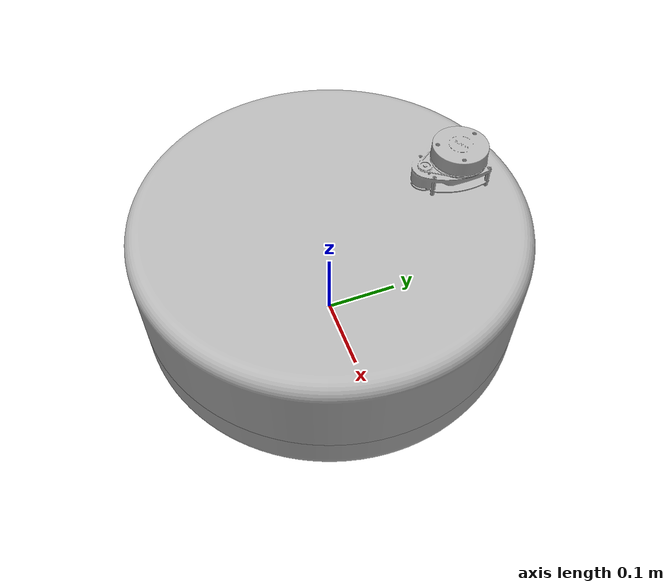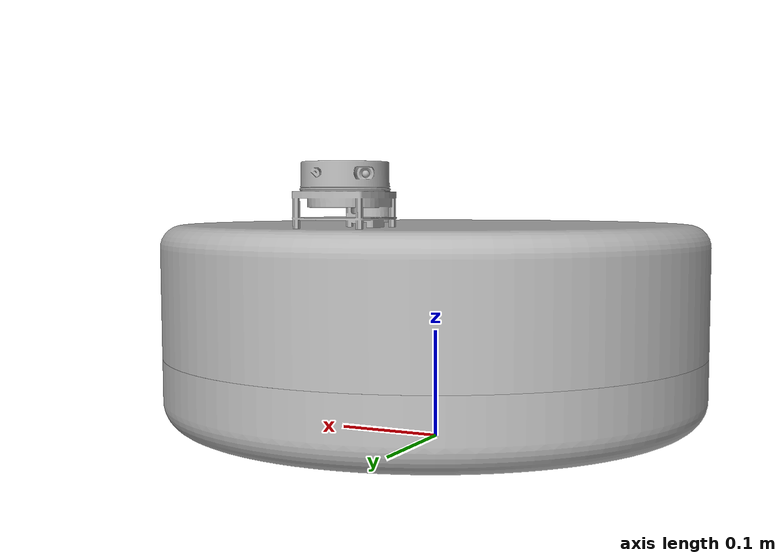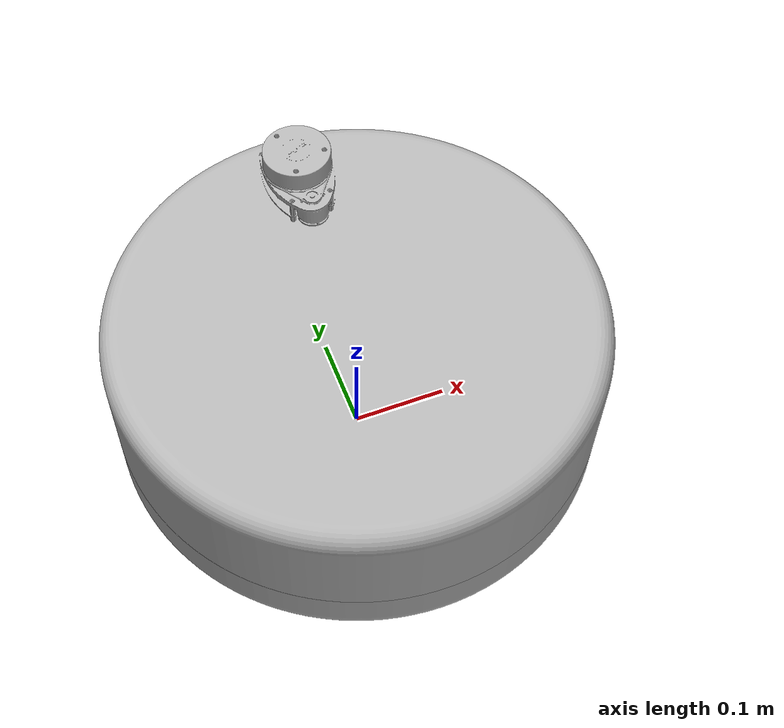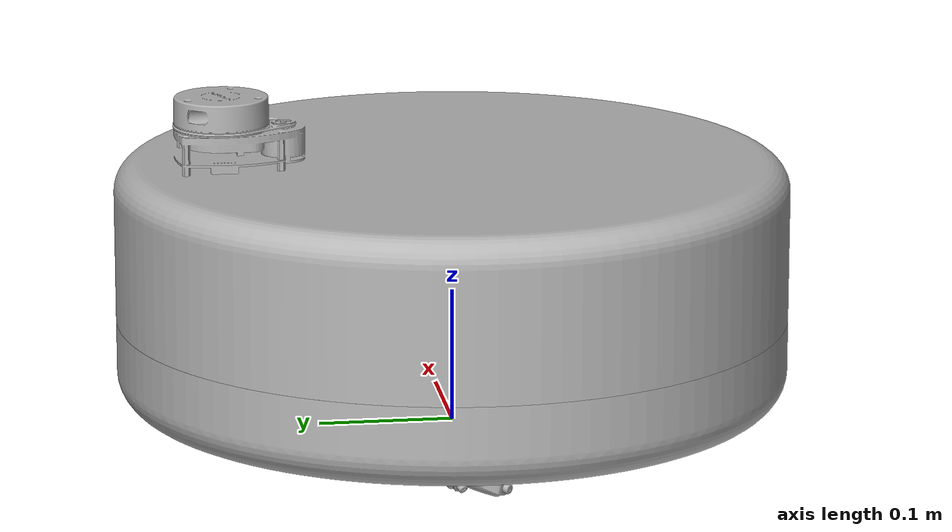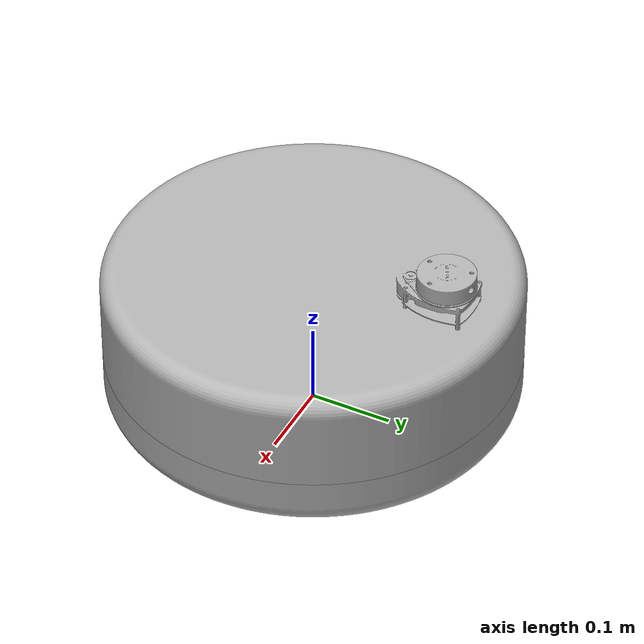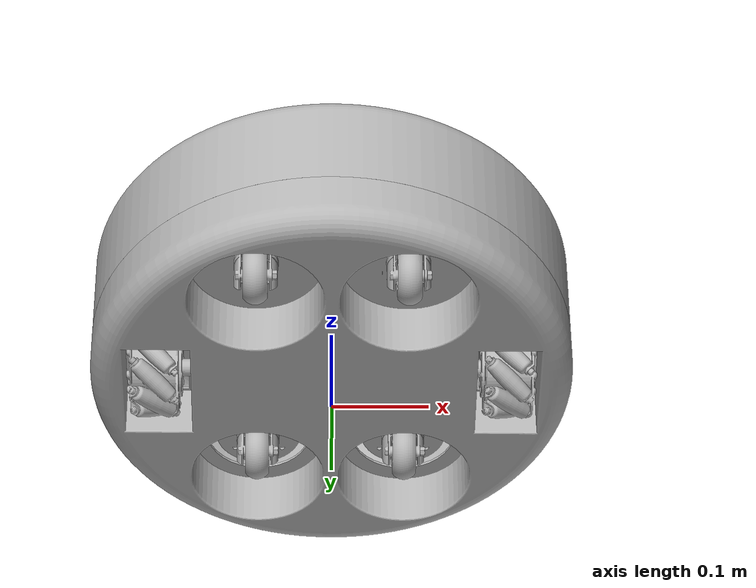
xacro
<?xml version="1.0" ?>
<robot name="wheelbase" xmlns:xacro="http://www.ros.org/wiki/xacro">

<xacro:include filename="$(find wheelbase_description)/models/urdf/materials.xacro" />
<xacro:include filename="$(find wheelbase_gazebo)/gazebo/wheelbase_materials.gazebo" />
<xacro:include filename="$(find wheelbase_gazebo)/gazebo/wheelbase_plugins.gazebo" />
<xacro:include filename="$(find wheelbase_gazebo)/gazebo/wheelbase_physics.gazebo" />

<link name="base_link">
  <inertial>
    <origin xyz="4.877641986557568e-16 -0.018658552355966238 0.08278725001137692" rpy="0 0 0"/>
    <mass value="3.805688673818861"/>
    <inertia ixx="0.063163" iyy="0.054403" izz="0.117281" ixy="0.0" iyz="-0.000489" ixz="0.0"/>
  </inertial>
  <visual>
    <origin xyz="0 0 0" rpy="0 0 0"/>
    <geometry>
      <mesh filename="$(find wheelbase_description)/models/meshes/base_link.stl" scale="0.001 0.001 0.001"/>
    </geometry>
    <material name="silver"/>
  </visual>
  <collision>
    <origin xyz="0 0 0" rpy="0 0 0"/>
    <geometry>
      <mesh filename="$(find wheelbase_description)/models/meshes/base_link.stl" scale="0.001 0.001 0.001"/>
    </geometry>
  </collision>
</link>

<link name="blbody_1">
  <inertial>
    <origin xyz="0.00014938972183493882 -0.007359677627955308 -0.013592300867627055" rpy="0 0 0"/>
    <mass value="0.19014627005982346"/>
    <inertia ixx="8.5e-05" iyy="7.3e-05" izz="7.6e-05" ixy="1e-06" iyz="-2.6e-05" ixz="1e-06"/>
  </inertial>
  <visual>
    <origin xyz="0.0775 0.133688 -0.074672" rpy="0 0 0"/>
    <geometry>
      <mesh filename="$(find wheelbase_description)/models/meshes/blbody_1.stl" scale="0.001 0.001 0.001"/>
    </geometry>
    <material name="silver"/>
  </visual>
  <collision>
    <origin xyz="0.0775 0.133688 -0.074672" rpy="0 0 0"/>
    <geometry>
      <mesh filename="$(find wheelbase_description)/models/meshes/blbody_1.stl" scale="0.001 0.001 0.001"/>
    </geometry>
  </collision>
</link>

<link name="brbody_1">
  <inertial>
    <origin xyz="0.00014939157119377156 -0.007359677627955363 -0.013592300867627097" rpy="0 0 0"/>
    <mass value="0.19014627005982263"/>
    <inertia ixx="8.5e-05" iyy="7.3e-05" izz="7.6e-05" ixy="1e-06" iyz="-2.6e-05" ixz="1e-06"/>
  </inertial>
  <visual>
    <origin xyz="-0.0775 0.133688 -0.074672" rpy="0 0 0"/>
    <geometry>
      <mesh filename="$(find wheelbase_description)/models/meshes/brbody_1.stl" scale="0.001 0.001 0.001"/>
    </geometry>
    <material name="silver"/>
  </visual>
  <collision>
    <origin xyz="-0.0775 0.133688 -0.074672" rpy="0 0 0"/>
    <geometry>
      <mesh filename="$(find wheelbase_description)/models/meshes/brbody_1.stl" scale="0.001 0.001 0.001"/>
    </geometry>
  </collision>
</link>

<link name="flbody_1">
  <inertial>
    <origin xyz="0.0001493896602373368 -0.007371286050261883 -0.013586022157761626" rpy="0 0 0"/>
    <mass value="0.19014627109702392"/>
    <inertia ixx="8.5e-05" iyy="7.2e-05" izz="7.6e-05" ixy="1e-06" iyz="-2.6e-05" ixz="1e-06"/>
  </inertial>
  <visual>
    <origin xyz="0.07798 -0.134335 -0.074428" rpy="0 0 0"/>
    <geometry>
      <mesh filename="$(find wheelbase_description)/models/meshes/flbody_1.stl" scale="0.001 0.001 0.001"/>
    </geometry>
    <material name="silver"/>
  </visual>
  <collision>
    <origin xyz="0.07798 -0.134335 -0.074428" rpy="0 0 0"/>
    <geometry>
      <mesh filename="$(find wheelbase_description)/models/meshes/flbody_1.stl" scale="0.001 0.001 0.001"/>
    </geometry>
  </collision>
</link>

<link name="frbody_1">
  <inertial>
    <origin xyz="0.00014939154224478945 -0.0073364432145827385 -0.013604729372114231" rpy="0 0 0"/>
    <mass value="0.19014627066064962"/>
    <inertia ixx="8.5e-05" iyy="7.3e-05" izz="7.6e-05" ixy="1e-06" iyz="-2.6e-05" ixz="1e-06"/>
  </inertial>
  <visual>
    <origin xyz="-0.07702 -0.13438 -0.074773" rpy="0 0 0"/>
    <geometry>
      <mesh filename="$(find wheelbase_description)/models/meshes/frbody_1.stl" scale="0.001 0.001 0.001"/>
    </geometry>
    <material name="silver"/>
  </visual>
  <collision>
    <origin xyz="-0.07702 -0.13438 -0.074773" rpy="0 0 0"/>
    <geometry>
      <mesh filename="$(find wheelbase_description)/models/meshes/frbody_1.stl" scale="0.001 0.001 0.001"/>
    </geometry>
  </collision>
</link>

<link name="flwheel_1">
  <inertial>
    <origin xyz="0.011664000000000271 4.85031257532742e-07 3.2883506063258183e-07" rpy="0 0 0"/>
    <mass value="0.4002742105569766"/>
    <inertia ixx="0.000177" iyy="0.000105" izz="0.000105" ixy="-0.0" iyz="-0.0" ixz="0.0"/>
  </inertial>
  <visual>
    <origin xyz="0.089644 -0.107 -0.032259" rpy="0 0 0"/>
    <geometry>
      <mesh filename="$(find wheelbase_description)/models/meshes/flwheel_1.stl" scale="0.001 0.001 0.001"/>
    </geometry>
    <material name="silver"/>
  </visual>
  <collision>
    <origin xyz="0.089644 -0.107 -0.032259" rpy="0 0 0"/>
    <geometry>
      <mesh filename="$(find wheelbase_description)/models/meshes/flwheel_1.stl" scale="0.001 0.001 0.001"/>
    </geometry>
  </collision>
</link>

<link name="frwheel_1">
  <inertial>
    <origin xyz="0.011663999999999827 8.189762357169172e-08 2.5024366512998997e-07" rpy="0 0 0"/>
    <mass value="0.4002742105569771"/>
    <inertia ixx="0.000177" iyy="0.000105" izz="0.000105" ixy="-0.0" iyz="0.0" ixz="0.0"/>
  </inertial>
  <visual>
    <origin xyz="-0.065356 -0.107154 -0.032534" rpy="0 0 0"/>
    <geometry>
      <mesh filename="$(find wheelbase_description)/models/meshes/frwheel_1.stl" scale="0.001 0.001 0.001"/>
    </geometry>
    <material name="silver"/>
  </visual>
  <collision>
    <origin xyz="-0.065356 -0.107154 -0.032534" rpy="0 0 0"/>
    <geometry>
      <mesh filename="$(find wheelbase_description)/models/meshes/frwheel_1.stl" scale="0.001 0.001 0.001"/>
    </geometry>
  </collision>
</link>

<link name="brwheel_1">
  <inertial>
    <origin xyz="-0.011664000000000077 -2.9881071383908164e-07 -4.217513900617309e-07" rpy="0 0 0"/>
    <mass value="0.40027421055697693"/>
    <inertia ixx="0.000177" iyy="0.000105" izz="0.000105" ixy="-0.0" iyz="-0.0" ixz="0.0"/>
  </inertial>
  <visual>
    <origin xyz="-0.089164 0.160987 -0.032481" rpy="0 0 0"/>
    <geometry>
      <mesh filename="$(find wheelbase_description)/models/meshes/brwheel_1.stl" scale="0.001 0.001 0.001"/>
    </geometry>
    <material name="silver"/>
  </visual>
  <collision>
    <origin xyz="-0.089164 0.160987 -0.032481" rpy="0 0 0"/>
    <geometry>
      <mesh filename="$(find wheelbase_description)/models/meshes/brwheel_1.stl" scale="0.001 0.001 0.001"/>
    </geometry>
  </collision>
</link>

<link name="blwheel_1">
  <inertial>
    <origin xyz="-0.011664000000000133 -2.988107136447926e-07 -4.217513900617309e-07" rpy="0 0 0"/>
    <mass value="0.4002742105569769"/>
    <inertia ixx="0.000177" iyy="0.000105" izz="0.000105" ixy="-0.0" iyz="-0.0" ixz="0.0"/>
  </inertial>
  <visual>
    <origin xyz="0.065836 0.160987 -0.032481" rpy="0 0 0"/>
    <geometry>
      <mesh filename="$(find wheelbase_description)/models/meshes/blwheel_1.stl" scale="0.001 0.001 0.001"/>
    </geometry>
    <material name="silver"/>
  </visual>
  <collision>
    <origin xyz="0.065836 0.160987 -0.032481" rpy="0 0 0"/>
    <geometry>
      <mesh filename="$(find wheelbase_description)/models/meshes/blwheel_1.stl" scale="0.001 0.001 0.001"/>
    </geometry>
  </collision>
</link>

<link name="lmwheel_1">
  <inertial>
    <origin xyz="-0.02451118669748789 -4.022434244760521e-07 2.780890716314044e-08" rpy="0 0 0"/>
    <mass value="0.2558759862973169"/>
    <inertia ixx="0.000296" iyy="0.000205" izz="0.000205" ixy="-0.0" iyz="-0.0" ixz="-0.0"/>
  </inertial>
  <visual>
    <origin xyz="0.157 -8.4e-05 -0.053747" rpy="0 0 0"/>
    <geometry>
      <mesh filename="$(find wheelbase_description)/models/meshes/lmwheel_1.stl" scale="0.001 0.001 0.001"/>
    </geometry>
    <material name="silver"/>
  </visual>
  <collision>
    <origin xyz="0.157 -8.4e-05 -0.053747" rpy="0 0 0"/>
    <geometry>
      <mesh filename="$(find wheelbase_description)/models/meshes/lmwheel_1.stl" scale="0.001 0.001 0.001"/>
    </geometry>
  </collision>
</link>

<link name="rmwheel_1">
  <inertial>
    <origin xyz="0.024511186697488335 1.5354622580527905e-07 2.402273406934552e-07" rpy="0 0 0"/>
    <mass value="0.2558759862973067"/>
    <inertia ixx="0.000296" iyy="0.000205" izz="0.000205" ixy="0.0" iyz="0.0" ixz="0.0"/>
  </inertial>
  <visual>
    <origin xyz="-0.157 -0.000182 -0.053746" rpy="0 0 0"/>
    <geometry>
      <mesh filename="$(find wheelbase_description)/models/meshes/rmwheel_1.stl" scale="0.001 0.001 0.001"/>
    </geometry>
    <material name="silver"/>
  </visual>
  <collision>
    <origin xyz="-0.157 -0.000182 -0.053746" rpy="0 0 0"/>
    <geometry>
      <mesh filename="$(find wheelbase_description)/models/meshes/rmwheel_1.stl" scale="0.001 0.001 0.001"/>
    </geometry>
  </collision>
</link>

<link name="l_m_clamp_1">
  <inertial>
    <origin xyz="0.05064998589086303 -0.04461412871917579 -0.04614971479491306" rpy="0 0 0"/>
    <mass value="1.781612993557575"/>
    <inertia ixx="0.006616" iyy="0.002696" izz="0.007336" ixy="0.000109" iyz="-0.001506" ixz="0.000421"/>
  </inertial>
  <visual>
    <origin xyz="0.1395 -0.076797 -0.11294" rpy="0 0 0"/>
    <geometry>
      <mesh filename="$(find wheelbase_description)/models/meshes/l_m_clamp_1.stl" scale="0.001 0.001 0.001"/>
    </geometry>
    <material name="silver"/>
  </visual>
  <collision>
    <origin xyz="0.1395 -0.076797 -0.11294" rpy="0 0 0"/>
    <geometry>
      <mesh filename="$(find wheelbase_description)/models/meshes/l_m_clamp_1.stl" scale="0.001 0.001 0.001"/>
    </geometry>
  </collision>
</link>

<link name="r_m_clamp_1">
  <inertial>
    <origin xyz="-0.05056459586676207 -0.045464553847886925 -0.046249593954142215" rpy="0 0 0"/>
    <mass value="1.7657597378662766"/>
    <inertia ixx="0.006433" iyy="0.002681" izz="0.007143" ixy="-0.000124" iyz="-0.001487" ixz="-0.000423"/>
  </inertial>
  <visual>
    <origin xyz="-0.1395 -0.076797 -0.11294" rpy="0 0 0"/>
    <geometry>
      <mesh filename="$(find wheelbase_description)/models/meshes/r_m_clamp_1.stl" scale="0.001 0.001 0.001"/>
    </geometry>
    <material name="silver"/>
  </visual>
  <collision>
    <origin xyz="-0.1395 -0.076797 -0.11294" rpy="0 0 0"/>
    <geometry>
      <mesh filename="$(find wheelbase_description)/models/meshes/r_m_clamp_1.stl" scale="0.001 0.001 0.001"/>
    </geometry>
  </collision>
</link>

<link name="topcover_1">
  <inertial>
    <origin xyz="-2.8402894336812473e-05 0.006380708957092697 0.08894790371795151" rpy="0 0 0"/>
    <mass value="0.9083298747068661"/>
    <inertia ixx="0.021829" iyy="0.020969" izz="0.040194" ixy="4e-06" iyz="-0.000268" ixz="1e-06"/>
  </inertial>
  <visual>
    <origin xyz="0.0 -6.6e-05 -0.083" rpy="0 0 0"/>
    <geometry>
      <mesh filename="$(find wheelbase_description)/models/meshes/topcover_1.stl" scale="0.001 0.001 0.001"/>
    </geometry>
    <material name="silver"/>
  </visual>
  <collision>
    <origin xyz="0.0 -6.6e-05 -0.083" rpy="0 0 0"/>
    <geometry>
      <mesh filename="$(find wheelbase_description)/models/meshes/topcover_1.stl" scale="0.001 0.001 0.001"/>
    </geometry>
  </collision>
</link>

<link name="basecover_1">
  <inertial>
    <origin xyz="4.306271547693276e-08 -1.3417406008355676e-06 -0.041449190774674516" rpy="0 0 0"/>
    <mass value="8.26904328209992"/>
    <inertia ixx="0.164421" iyy="0.172326" izz="0.330566" ixy="0.0" iyz="0.0" ixz="0.0"/>
  </inertial>
  <visual>
    <origin xyz="0.0 -6.6e-05 -0.083" rpy="0 0 0"/>
    <geometry>
      <mesh filename="$(find wheelbase_description)/models/meshes/basecover_1.stl" scale="0.001 0.001 0.001"/>
    </geometry>
    <material name="silver"/>
  </visual>
  <collision>
    <origin xyz="0.0 -6.6e-05 -0.083" rpy="0 0 0"/>
    <geometry>
      <mesh filename="$(find wheelbase_description)/models/meshes/basecover_1.stl" scale="0.001 0.001 0.001"/>
    </geometry>
  </collision>
</link>

<link name="lidar_1">
  <inertial>
    <origin xyz="-0.001262937955366997 0.0019039619404818409 -0.013950427004351534" rpy="0 0 0"/>
    <mass value="0.17388739461388325"/>
    <inertia ixx="7.5e-05" iyy="7.9e-05" izz="0.000125" ixy="0.0" iyz="-2e-06" ixz="1e-06"/>
  </inertial>
  <visual>
    <origin xyz="0.0005 -0.170623 -0.251375" rpy="0 0 0"/>
    <geometry>
      <mesh filename="$(find wheelbase_description)/models/meshes/lidar_1.stl" scale="0.001 0.001 0.001"/>
    </geometry>
    <material name="silver"/>
  </visual>
  <collision>
    <origin xyz="0.0005 -0.170623 -0.251375" rpy="0 0 0"/>
    <geometry>
      <mesh filename="$(find wheelbase_description)/models/meshes/lidar_1.stl" scale="0.001 0.001 0.001"/>
    </geometry>
  </collision>
</link>

<joint name="bl_swivel" type="continuous">
  <origin xyz="-0.0775 -0.133688 0.074672" rpy="0 0 0"/>
  <parent link="base_link"/>
  <child link="blbody_1"/>
  <axis xyz="0.0 -0.0 -1.0"/>
</joint>

<joint name="br_swivel" type="continuous">
  <origin xyz="0.0775 -0.133688 0.074672" rpy="0 0 0"/>
  <parent link="base_link"/>
  <child link="brbody_1"/>
  <axis xyz="0.0 -0.0 -1.0"/>
</joint>

<joint name="fl_swivel" type="continuous">
  <origin xyz="0.06152 0.057538 -0.038512" rpy="0 0 0"/>
  <parent link="l_m_clamp_1"/>
  <child link="flbody_1"/>
  <axis xyz="0.0 -0.000826 -1.0"/>
</joint>

<joint name="fr_swivel" type="continuous">
  <origin xyz="-0.06248 0.057583 -0.038167" rpy="0 0 0"/>
  <parent link="r_m_clamp_1"/>
  <child link="frbody_1"/>
  <axis xyz="0.0 0.001752 -0.999998"/>
</joint>

<joint name="fl_wheel" type="continuous">
  <origin xyz="-0.011664 -0.027335 -0.042169" rpy="0 0 0"/>
  <parent link="flbody_1"/>
  <child link="flwheel_1"/>
  <axis xyz="1.0 -0.0 0.0"/>
</joint>

<joint name="fr_wheel" type="continuous">
  <origin xyz="-0.011664 -0.027226 -0.042239" rpy="0 0 0"/>
  <parent link="frbody_1"/>
  <child link="frwheel_1"/>
  <axis xyz="1.0 -0.0 0.0"/>
</joint>

<joint name="br_wheel" type="continuous">
  <origin xyz="0.011664 -0.027299 -0.042191" rpy="0 0 0"/>
  <parent link="brbody_1"/>
  <child link="brwheel_1"/>
  <axis xyz="1.0 0.0 0.0"/>
</joint>

<joint name="bl_wheel" type="continuous">
  <origin xyz="0.011664 -0.027299 -0.042191" rpy="0 0 0"/>
  <parent link="blbody_1"/>
  <child link="blwheel_1"/>
  <axis xyz="1.0 0.0 0.0"/>
</joint>

<joint name="lm_wheel" type="continuous">
  <origin xyz="-0.0175 -0.076713 -0.059193" rpy="0 0 0"/>
  <parent link="l_m_clamp_1"/>
  <child link="lmwheel_1"/>
  <axis xyz="-1.0 0.0 0.0"/>
</joint>

<joint name="rm_wheel" type="continuous">
  <origin xyz="0.0175 -0.076615 -0.059194" rpy="0 0 0"/>
  <parent link="r_m_clamp_1"/>
  <child link="rmwheel_1"/>
  <axis xyz="-1.0 0.0 0.0"/>
</joint>

<joint name="l_clamp" type="revolute">
  <origin xyz="-0.1395 0.076797 0.11294" rpy="0 0 0"/>
  <parent link="base_link"/>
  <child link="l_m_clamp_1"/>
  <axis xyz="1.0 0.0 0.0"/>
  <limit upper="0.174533" lower="-0.174533" effort="100" velocity="100"/>
</joint>

<joint name="r_clamp" type="revolute">
  <origin xyz="0.1395 0.076797 0.11294" rpy="0 0 0"/>
  <parent link="base_link"/>
  <child link="r_m_clamp_1"/>
  <axis xyz="1.0 -0.0 -0.0"/>
  <limit upper="0.174533" lower="-0.174533" effort="100" velocity="100"/>
</joint>

<joint name="topcover" type="fixed">
  <origin xyz="0.0 6.6e-05 0.083" rpy="0 0 0"/>
  <parent link="base_link"/>
  <child link="topcover_1"/>
</joint>

<joint name="basecover" type="fixed">
  <origin xyz="0.0 6.6e-05 0.083" rpy="0 0 0"/>
  <parent link="base_link"/>
  <child link="basecover_1"/>
</joint>

<joint name="lidar_joint" type="continuous">
  <origin xyz="-0.0005 0.170557 0.168375" rpy="0 0 0"/>
  <parent link="topcover_1"/>
  <child link="lidar_1"/>
  <axis xyz="0.0 0.0 1.0"/>
</joint>

</robot>

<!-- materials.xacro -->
<robot name="wheelbase" xmlns:xacro="http://www.ros.org/wiki/xacro" >

<material name="silver">
  <color rgba="0.700 0.700 0.700 1.000"/>

</material>
<material name="grey">
  <color rgba="0.300 0.300 0.300 1.000"/>
</material>

<material name="black">
  <color rgba="0.000 0.000 0.000 1.000"/>
</material>

<material name="blue">
  <color rgba="0.000 0.000 1.000 1.000"/>
</material>

</robot>

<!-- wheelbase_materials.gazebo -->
<robot name="wheelbase" xmlns:xacro="http://www.ros.org/wiki/xacro" >

<xacro:property name="body_color1" value="Gazebo/White" />
<xacro:property name="body_color2" value="Gazebo/Grey" />
<xacro:property name="wheel_color" value="Gazebo/FlatBlack" />
<xacro:property name="lidar_color" value="Gazebo/Blue" />

<gazebo reference="base_link">
  <material>${body_color1}</material>
</gazebo>

<gazebo reference="blbody_1">
  <material>${body_color2}</material>
</gazebo>

<gazebo reference="brbody_1">
  <material>${body_color2}</material>
</gazebo>

<gazebo reference="flbody_1">
  <material>${body_color2}</material>
</gazebo>

<gazebo reference="frbody_1">
  <material>${body_color2}</material>
</gazebo>

<gazebo reference="flwheel_1">
  <material>${wheel_color}</material>
</gazebo>

<gazebo reference="frwheel_1">
  <material>${wheel_color}</material>
</gazebo>

<gazebo reference="brwheel_1">
  <material>${wheel_color}</material>
</gazebo>

<gazebo reference="blwheel_1">
  <material>${wheel_color}</material>
</gazebo>

<gazebo reference="lmwheel_1">
  <material>${wheel_color}</material>
</gazebo>

<gazebo reference="rmwheel_1">
  <material>${wheel_color}</material>
</gazebo>

<gazebo reference="l_m_clamp_1">
  <material>${body_color2}</material>

</gazebo>

<gazebo reference="r_m_clamp_1">
  <material>${body_color2}</material>
</gazebo>

<gazebo reference="topcover_1">
  <material>${body_color2}</material>
</gazebo>

<gazebo reference="basecover_1">
  <material>${body_color2}</material>
</gazebo>

<gazebo reference="lidar_1">
  <material>${lidar_color}</material>
</gazebo>

</robot>
